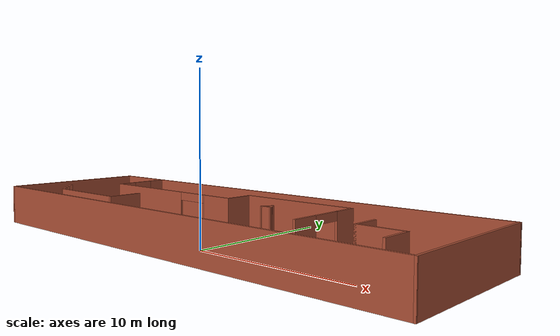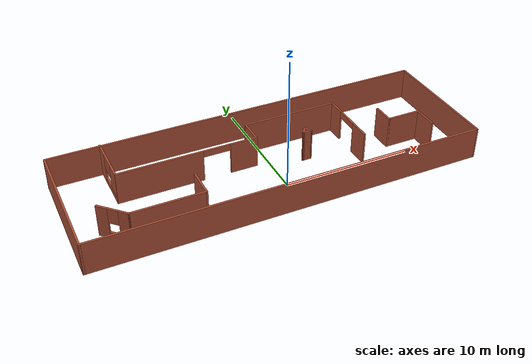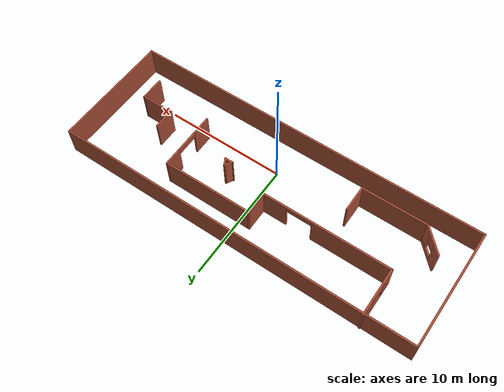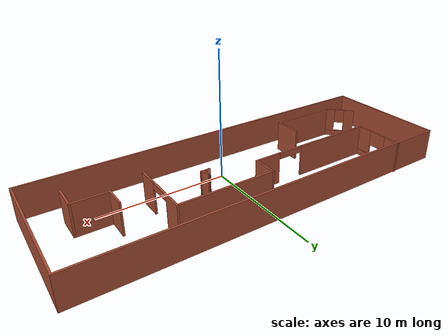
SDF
<?xml version='1.0'?>
<sdf version='1.7'>
  <model name='mapa_01'>
    <pose>-0.64059 2.16833 0 0 -0 0</pose>
    <link name='Wall_10'>
      <collision name='Wall_10_Collision'>
        <geometry>
          <box>
            <size>7.5 0.15 2.5</size>
          </box>
        </geometry>
        <pose>0 0 1.25 0 -0 0</pose>
      </collision>
      <visual name='Wall_10_Visual'>
        <pose>0 0 1.25 0 -0 0</pose>
        <geometry>
          <box>
            <size>7.5 0.15 2.5</size>
          </box>
        </geometry>
        <material>
          <script>
            <uri>file://media/materials/scripts/gazebo.material</uri>
            <name>Gazebo/Bricks</name>
          </script>
          <ambient>1 1 1 1</ambient>
        </material>
        <meta>
          <layer>0</layer>
        </meta>
      </visual>
      <pose>3.33942 2.91382 0 0 -0 0</pose>
    </link>
    <link name='Wall_11'>
      <pose>7.01443 0.488825 0 0 -0 -1.5708</pose>
      <visual name='Wall_11_Visual_0'>
        <pose>-1.75094 0 1.25 0 -0 0</pose>
        <geometry>
          <box>
            <size>1.49812 0.15 2.5</size>
          </box>
        </geometry>
        <material>
          <script>
            <uri>file://media/materials/scripts/gazebo.material</uri>
            <name>Gazebo/Bricks</name>
          </script>
          <ambient>1 1 1 1</ambient>
        </material>
        <meta>
          <layer>0</layer>
        </meta>
      </visual>
      <collision name='Wall_11_Collision_0'>
        <geometry>
          <box>
            <size>1.49812 0.15 2.5</size>
          </box>
        </geometry>
        <pose>-1.75094 0 1.25 0 -0 0</pose>
      </collision>
      <visual name='Wall_11_Visual_1'>
        <pose>1.6643 0 1.25 0 -0 0</pose>
        <geometry>
          <box>
            <size>1.67141 0.15 2.5</size>
          </box>
        </geometry>
        <material>
          <script>
            <uri>file://media/materials/scripts/gazebo.material</uri>
            <name>Gazebo/Bricks</name>
          </script>
          <ambient>1 1 1 1</ambient>
        </material>
        <meta>
          <layer>0</layer>
        </meta>
      </visual>
      <collision name='Wall_11_Collision_1'>
        <geometry>
          <box>
            <size>1.67141 0.15 2.5</size>
          </box>
        </geometry>
        <pose>1.6643 0 1.25 0 -0 0</pose>
      </collision>
      <visual name='Wall_11_Visual_2'>
        <pose>-0.086645 0 2.25 0 -0 0</pose>
        <geometry>
          <box>
            <size>1.83048 0.15 0.5</size>
          </box>
        </geometry>
        <material>
          <script>
            <uri>file://media/materials/scripts/gazebo.material</uri>
            <name>Gazebo/Bricks</name>
          </script>
          <ambient>1 1 1 1</ambient>
        </material>
        <meta>
          <layer>0</layer>
        </meta>
      </visual>
      <collision name='Wall_11_Collision_2'>
        <geometry>
          <box>
            <size>1.83048 0.15 0.5</size>
          </box>
        </geometry>
        <pose>-0.086645 0 2.25 0 -0 0</pose>
      </collision>
    </link>
    <link name='Wall_17'>
      <pose>-12.1518 -2.52342 0 0 -0 -0.785398</pose>
      <visual name='Wall_17_Visual_0'>
        <pose>-0.820347 0 1.25 0 -0 0</pose>
        <geometry>
          <box>
            <size>0.859305 0.15 2.5</size>
          </box>
        </geometry>
        <material>
          <script>
            <uri>file://media/materials/scripts/gazebo.material</uri>
            <name>Gazebo/Bricks</name>
          </script>
          <ambient>1 1 1 1</ambient>
        </material>
        <meta>
          <layer>0</layer>
        </meta>
      </visual>
      <collision name='Wall_17_Collision_0'>
        <geometry>
          <box>
            <size>0.859305 0.15 2.5</size>
          </box>
        </geometry>
        <pose>-0.820347 0 1.25 0 -0 0</pose>
      </collision>
      <visual name='Wall_17_Visual_1'>
        <pose>0.429653 0 0.25 0 -0 0</pose>
        <geometry>
          <box>
            <size>1.6407 0.15 0.5</size>
          </box>
        </geometry>
        <material>
          <script>
            <uri>file://media/materials/scripts/gazebo.material</uri>
            <name>Gazebo/Bricks</name>
          </script>
          <ambient>1 1 1 1</ambient>
        </material>
        <meta>
          <layer>0</layer>
        </meta>
      </visual>
      <collision name='Wall_17_Collision_1'>
        <geometry>
          <box>
            <size>1.6407 0.15 0.5</size>
          </box>
        </geometry>
        <pose>0.429653 0 0.25 0 -0 0</pose>
      </collision>
      <visual name='Wall_17_Visual_2'>
        <pose>0.829653 0 1.5 0 -0 0</pose>
        <geometry>
          <box>
            <size>0.840695 0.15 2</size>
          </box>
        </geometry>
        <material>
          <script>
            <uri>file://media/materials/scripts/gazebo.material</uri>
            <name>Gazebo/Bricks</name>
          </script>
          <ambient>1 1 1 1</ambient>
        </material>
        <meta>
          <layer>0</layer>
        </meta>
      </visual>
      <collision name='Wall_17_Collision_2'>
        <geometry>
          <box>
            <size>0.840695 0.15 2</size>
          </box>
        </geometry>
        <pose>0.829653 0 1.5 0 -0 0</pose>
      </collision>
      <visual name='Wall_17_Visual_3'>
        <pose>0.009305 0 1.9 0 -0 0</pose>
        <geometry>
          <box>
            <size>0.8 0.15 1.2</size>
          </box>
        </geometry>
        <material>
          <script>
            <uri>file://media/materials/scripts/gazebo.material</uri>
            <name>Gazebo/Bricks</name>
          </script>
          <ambient>1 1 1 1</ambient>
        </material>
        <meta>
          <layer>0</layer>
        </meta>
      </visual>
      <collision name='Wall_17_Collision_3'>
        <geometry>
          <box>
            <size>0.8 0.15 1.2</size>
          </box>
        </geometry>
        <pose>0.009305 0 1.9 0 -0 0</pose>
      </collision>
    </link>
    <link name='Wall_18'>
      <collision name='Wall_18_Collision'>
        <geometry>
          <box>
            <size>5.5 0.15 2.5</size>
          </box>
        </geometry>
        <pose>0 0 1.25 0 -0 0</pose>
      </collision>
      <visual name='Wall_18_Visual'>
        <pose>0 0 1.25 0 -0 0</pose>
        <geometry>
          <box>
            <size>5.5 0.15 2.5</size>
          </box>
        </geometry>
        <material>
          <script>
            <uri>file://media/materials/scripts/gazebo.material</uri>
            <name>Gazebo/Bricks</name>
          </script>
          <ambient>1 1 1 1</ambient>
        </material>
        <meta>
          <layer>0</layer>
        </meta>
      </visual>
      <pose>-8.64593 -3.35427 0 0 -0 0</pose>
    </link>
    <link name='Wall_19'>
      <collision name='Wall_19_Collision'>
        <geometry>
          <box>
            <size>2.25 0.15 2.5</size>
          </box>
        </geometry>
        <pose>0 0 1.25 0 -0 0</pose>
      </collision>
      <visual name='Wall_19_Visual'>
        <pose>0 0 1.25 0 -0 0</pose>
        <geometry>
          <box>
            <size>2.25 0.15 2.5</size>
          </box>
        </geometry>
        <material>
          <script>
            <uri>file://media/materials/scripts/gazebo.material</uri>
            <name>Gazebo/Bricks</name>
          </script>
          <ambient>1 1 1 1</ambient>
        </material>
        <meta>
          <layer>0</layer>
        </meta>
      </visual>
      <pose>-5.97093 -2.30427 0 0 -0 1.5708</pose>
    </link>
    <link name='Wall_2'>
      <collision name='Wall_2_Collision'>
        <geometry>
          <box>
            <size>9.88469 0.15 2.5</size>
          </box>
        </geometry>
        <pose>0 0 1.25 0 -0 0</pose>
      </collision>
      <visual name='Wall_2_Visual'>
        <pose>0 0 1.25 0 -0 0</pose>
        <geometry>
          <box>
            <size>9.88469 0.15 2.5</size>
          </box>
        </geometry>
        <material>
          <script>
            <uri>file://media/materials/scripts/gazebo.material</uri>
            <name>Gazebo/Bricks</name>
          </script>
          <ambient>1 1 1 1</ambient>
        </material>
        <meta>
          <layer>0</layer>
        </meta>
      </visual>
      <pose>-14.925 -0.046068 0 0 -0 -1.57797</pose>
    </link>
    <link name='Wall_25'>
      <collision name='Wall_25_Collision'>
        <geometry>
          <box>
            <size>1.75 0.15 2.5</size>
          </box>
        </geometry>
        <pose>0 0 1.25 0 -0 0</pose>
      </collision>
      <visual name='Wall_25_Visual'>
        <pose>0 0 1.25 0 -0 0</pose>
        <geometry>
          <box>
            <size>1.75 0.15 2.5</size>
          </box>
        </geometry>
        <material>
          <script>
            <uri>file://media/materials/scripts/gazebo.material</uri>
            <name>Gazebo/Bricks</name>
          </script>
          <ambient>1 1 1 1</ambient>
        </material>
        <meta>
          <layer>0</layer>
        </meta>
      </visual>
      <pose>9.76757 -0.143114 0 0 -0 -1.5708</pose>
    </link>
    <link name='Wall_26'>
      <collision name='Wall_26_Collision'>
        <geometry>
          <box>
            <size>2.75 0.15 2.5</size>
          </box>
        </geometry>
        <pose>0 0 1.25 0 -0 0</pose>
      </collision>
      <visual name='Wall_26_Visual'>
        <pose>0 0 1.25 0 -0 0</pose>
        <geometry>
          <box>
            <size>2.75 0.15 2.5</size>
          </box>
        </geometry>
        <material>
          <script>
            <uri>file://media/materials/scripts/gazebo.material</uri>
            <name>Gazebo/Bricks</name>
          </script>
          <ambient>1 1 1 1</ambient>
        </material>
        <meta>
          <layer>0</layer>
        </meta>
      </visual>
      <pose>11.0676 -0.943114 0 0 -0 0</pose>
    </link>
    <link name='Wall_27'>
      <collision name='Wall_27_Collision'>
        <geometry>
          <box>
            <size>2 0.15 2.5</size>
          </box>
        </geometry>
        <pose>0 0 1.25 0 -0 0</pose>
      </collision>
      <visual name='Wall_27_Visual'>
        <pose>0 0 1.25 0 -0 0</pose>
        <geometry>
          <box>
            <size>2 0.15 2.5</size>
          </box>
        </geometry>
        <material>
          <script>
            <uri>file://media/materials/scripts/gazebo.material</uri>
            <name>Gazebo/Bricks</name>
          </script>
          <ambient>1 1 1 1</ambient>
        </material>
        <meta>
          <layer>0</layer>
        </meta>
      </visual>
      <pose>12.3676 -1.86811 0 0 -0 -1.5708</pose>
    </link>
    <link name='Wall_3'>
      <collision name='Wall_3_Collision'>
        <geometry>
          <box>
            <size>30 0.15 2.5</size>
          </box>
        </geometry>
        <pose>0 0 1.25 0 -0 0</pose>
      </collision>
      <visual name='Wall_3_Visual'>
        <pose>0 0 1.25 0 -0 0</pose>
        <geometry>
          <box>
            <size>30 0.15 2.5</size>
          </box>
        </geometry>
        <material>
          <script>
            <uri>file://media/materials/scripts/gazebo.material</uri>
            <name>Gazebo/Bricks</name>
          </script>
          <ambient>1 1 1 1</ambient>
        </material>
        <meta>
          <layer>0</layer>
        </meta>
      </visual>
      <pose>-0.034893 -4.91291 0 0 -0 0</pose>
    </link>
    <link name='Wall_31'>
      <collision name='Wall_31_Collision'>
        <geometry>
          <box>
            <size>0.75 0.15 2.5</size>
          </box>
        </geometry>
        <pose>0 0 1.25 0 -0 0</pose>
      </collision>
      <visual name='Wall_31_Visual'>
        <pose>0 0 1.25 0 -0 0</pose>
        <geometry>
          <box>
            <size>0.75 0.15 2.5</size>
          </box>
        </geometry>
        <material>
          <script>
            <uri>file://media/materials/scripts/gazebo.material</uri>
            <name>Gazebo/Bricks</name>
          </script>
          <ambient>1 1 1 1</ambient>
        </material>
        <meta>
          <layer>0</layer>
        </meta>
      </visual>
      <pose>3.40248 0.167682 0 0 -0 0</pose>
    </link>
    <link name='Wall_32'>
      <collision name='Wall_32_Collision'>
        <geometry>
          <box>
            <size>0.75 0.15 2.5</size>
          </box>
        </geometry>
        <pose>0 0 1.25 0 -0 0</pose>
      </collision>
      <visual name='Wall_32_Visual'>
        <pose>0 0 1.25 0 -0 0</pose>
        <geometry>
          <box>
            <size>0.75 0.15 2.5</size>
          </box>
        </geometry>
        <material>
          <script>
            <uri>file://media/materials/scripts/gazebo.material</uri>
            <name>Gazebo/Bricks</name>
          </script>
          <ambient>1 1 1 1</ambient>
        </material>
        <meta>
          <layer>0</layer>
        </meta>
      </visual>
      <pose>3.55248 0.42749 0 0 -0 2.0944</pose>
    </link>
    <link name='Wall_34'>
      <collision name='Wall_34_Collision'>
        <geometry>
          <box>
            <size>0.75 0.15 2.5</size>
          </box>
        </geometry>
        <pose>0 0 1.25 0 -0 0</pose>
      </collision>
      <visual name='Wall_34_Visual'>
        <pose>0 0 1.25 0 -0 0</pose>
        <geometry>
          <box>
            <size>0.75 0.15 2.5</size>
          </box>
        </geometry>
        <material>
          <script>
            <uri>file://media/materials/scripts/gazebo.material</uri>
            <name>Gazebo/Bricks</name>
          </script>
          <ambient>1 1 1 1</ambient>
        </material>
        <meta>
          <layer>0</layer>
        </meta>
      </visual>
      <pose>3.25248 0.42749 0 0 -0 -2.0944</pose>
    </link>
    <link name='Wall_4'>
      <collision name='Wall_4_Collision'>
        <geometry>
          <box>
            <size>9.88469 0.15 2.5</size>
          </box>
        </geometry>
        <pose>0 0 1.25 0 -0 0</pose>
      </collision>
      <visual name='Wall_4_Visual'>
        <pose>0 0 1.25 0 -0 0</pose>
        <geometry>
          <box>
            <size>9.88469 0.15 2.5</size>
          </box>
        </geometry>
        <material>
          <script>
            <uri>file://media/materials/scripts/gazebo.material</uri>
            <name>Gazebo/Bricks</name>
          </script>
          <ambient>1 1 1 1</ambient>
        </material>
        <meta>
          <layer>0</layer>
        </meta>
      </visual>
      <pose>14.925 -0.046068 0 0 -0 1.56363</pose>
    </link>
    <link name='Wall_5'>
      <collision name='Wall_5_Collision'>
        <geometry>
          <box>
            <size>30 0.15 2.5</size>
          </box>
        </geometry>
        <pose>0 0 1.25 0 -0 0</pose>
      </collision>
      <visual name='Wall_5_Visual'>
        <pose>0 0 1.25 0 -0 0</pose>
        <geometry>
          <box>
            <size>30 0.15 2.5</size>
          </box>
        </geometry>
        <material>
          <script>
            <uri>file://media/materials/scripts/gazebo.material</uri>
            <name>Gazebo/Bricks</name>
          </script>
          <ambient>1 1 1 1</ambient>
        </material>
        <meta>
          <layer>0</layer>
        </meta>
      </visual>
      <pose>0.034893 4.84404 0 0 -0 3.14159</pose>
    </link>
    <link name='Wall_7'>
      <pose>-10.9123 2.98882 0 0 -0 -1.5708</pose>
      <visual name='Wall_7_Visual_0'>
        <pose>-1.34833 0 1.25 0 -0 0</pose>
        <geometry>
          <box>
            <size>1.30334 0.15 2.5</size>
          </box>
        </geometry>
        <material>
          <script>
            <uri>file://media/materials/scripts/gazebo.material</uri>
            <name>Gazebo/Bricks</name>
          </script>
          <ambient>1 1 1 1</ambient>
        </material>
        <meta>
          <layer>0</layer>
        </meta>
      </visual>
      <collision name='Wall_7_Collision_0'>
        <geometry>
          <box>
            <size>1.30334 0.15 2.5</size>
          </box>
        </geometry>
        <pose>-1.34833 0 1.25 0 -0 0</pose>
      </collision>
      <visual name='Wall_7_Visual_1'>
        <pose>0.651669 0 0.25 0 -0 0</pose>
        <geometry>
          <box>
            <size>2.69666 0.15 0.5</size>
          </box>
        </geometry>
        <material>
          <script>
            <uri>file://media/materials/scripts/gazebo.material</uri>
            <name>Gazebo/Bricks</name>
          </script>
          <ambient>1 1 1 1</ambient>
        </material>
        <meta>
          <layer>0</layer>
        </meta>
      </visual>
      <collision name='Wall_7_Collision_1'>
        <geometry>
          <box>
            <size>2.69666 0.15 0.5</size>
          </box>
        </geometry>
        <pose>0.651669 0 0.25 0 -0 0</pose>
      </collision>
      <visual name='Wall_7_Visual_2'>
        <pose>1.35407 0 1.5 0 -0 0</pose>
        <geometry>
          <box>
            <size>1.29185 0.15 2</size>
          </box>
        </geometry>
        <material>
          <script>
            <uri>file://media/materials/scripts/gazebo.material</uri>
            <name>Gazebo/Bricks</name>
          </script>
          <ambient>1 1 1 1</ambient>
        </material>
        <meta>
          <layer>0</layer>
        </meta>
      </visual>
      <collision name='Wall_7_Collision_2'>
        <geometry>
          <box>
            <size>1.29185 0.15 2</size>
          </box>
        </geometry>
        <pose>1.35407 0 1.5 0 -0 0</pose>
      </collision>
      <visual name='Wall_7_Visual_3'>
        <pose>0.005743 0 1.9 0 -0 0</pose>
        <geometry>
          <box>
            <size>1.40481 0.15 1.2</size>
          </box>
        </geometry>
        <material>
          <script>
            <uri>file://media/materials/scripts/gazebo.material</uri>
            <name>Gazebo/Bricks</name>
          </script>
          <ambient>1 1 1 1</ambient>
        </material>
        <meta>
          <layer>0</layer>
        </meta>
      </visual>
      <collision name='Wall_7_Collision_3'>
        <geometry>
          <box>
            <size>1.40481 0.15 1.2</size>
          </box>
        </geometry>
        <pose>0.005743 0 1.9 0 -0 0</pose>
      </collision>
    </link>
    <link name='Wall_8'>
      <pose>-5.61231 1.06382 0 0 -0 0</pose>
      <visual name='Wall_8_Visual_0'>
        <pose>-2.10228 0 1.25 0 -0 0</pose>
        <geometry>
          <box>
            <size>6.49891 0.15 2.5</size>
          </box>
        </geometry>
        <material>
          <script>
            <uri>file://media/materials/scripts/gazebo.material</uri>
            <name>Gazebo/Bricks</name>
          </script>
          <ambient>1 1 1 1</ambient>
        </material>
        <meta>
          <layer>0</layer>
        </meta>
      </visual>
      <collision name='Wall_8_Collision_0'>
        <geometry>
          <box>
            <size>6.49891 0.15 2.5</size>
          </box>
        </geometry>
        <pose>-2.10228 0 1.25 0 -0 0</pose>
      </collision>
      <visual name='Wall_8_Visual_1'>
        <pose>4.29263 0 1.25 0 -0 0</pose>
        <geometry>
          <box>
            <size>2.11821 0.15 2.5</size>
          </box>
        </geometry>
        <material>
          <script>
            <uri>file://media/materials/scripts/gazebo.material</uri>
            <name>Gazebo/Bricks</name>
          </script>
          <ambient>1 1 1 1</ambient>
        </material>
        <meta>
          <layer>0</layer>
        </meta>
      </visual>
      <collision name='Wall_8_Collision_1'>
        <geometry>
          <box>
            <size>2.11821 0.15 2.5</size>
          </box>
        </geometry>
        <pose>4.29263 0 1.25 0 -0 0</pose>
      </collision>
      <visual name='Wall_8_Visual_2'>
        <pose>2.19035 0 2.25 0 -0 0</pose>
        <geometry>
          <box>
            <size>2.08636 0.15 0.5</size>
          </box>
        </geometry>
        <material>
          <script>
            <uri>file://media/materials/scripts/gazebo.material</uri>
            <name>Gazebo/Bricks</name>
          </script>
          <ambient>1 1 1 1</ambient>
        </material>
        <meta>
          <layer>0</layer>
        </meta>
      </visual>
      <collision name='Wall_8_Collision_2'>
        <geometry>
          <box>
            <size>2.08636 0.15 0.5</size>
          </box>
        </geometry>
        <pose>2.19035 0 2.25 0 -0 0</pose>
      </collision>
    </link>
    <link name='Wall_9'>
      <collision name='Wall_9_Collision'>
        <geometry>
          <box>
            <size>2 0.15 2.5</size>
          </box>
        </geometry>
        <pose>0 0 1.25 0 -0 0</pose>
      </collision>
      <visual name='Wall_9_Visual'>
        <pose>0 0 1.25 0 -0 0</pose>
        <geometry>
          <box>
            <size>2 0.15 2.5</size>
          </box>
        </geometry>
        <material>
          <script>
            <uri>file://media/materials/scripts/gazebo.material</uri>
            <name>Gazebo/Bricks</name>
          </script>
          <ambient>1 1 1 1</ambient>
        </material>
        <meta>
          <layer>0</layer>
        </meta>
      </visual>
      <pose>-0.335575 1.98883 0 0 -0 1.5708</pose>
    </link>
    <static>1</static>
  </model>
</sdf>
